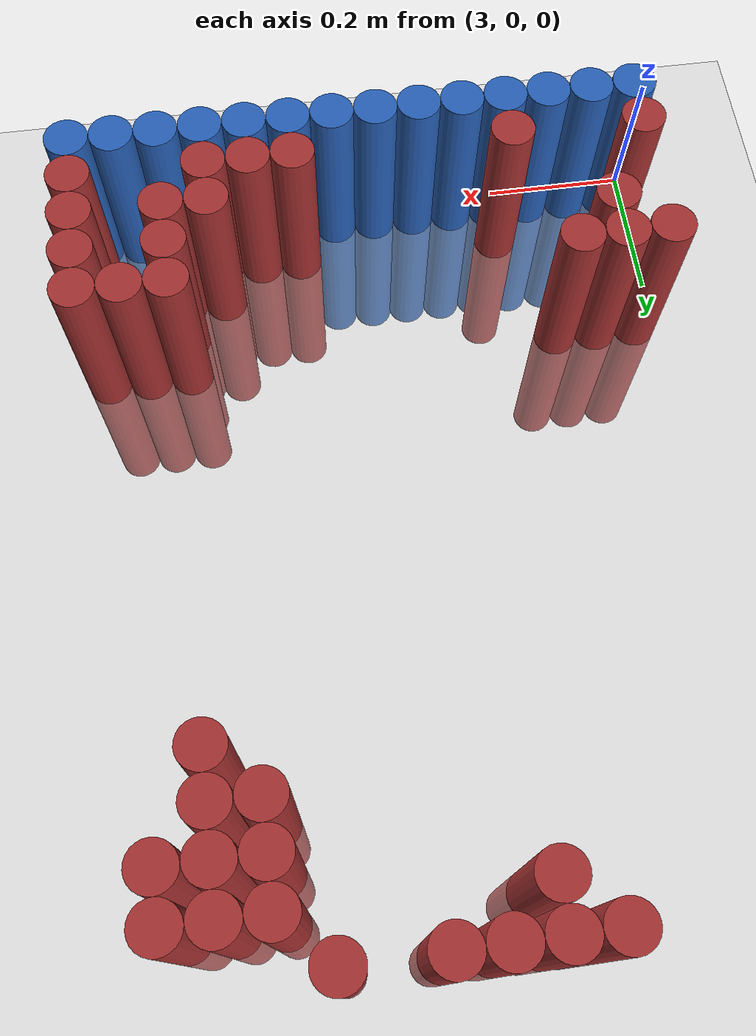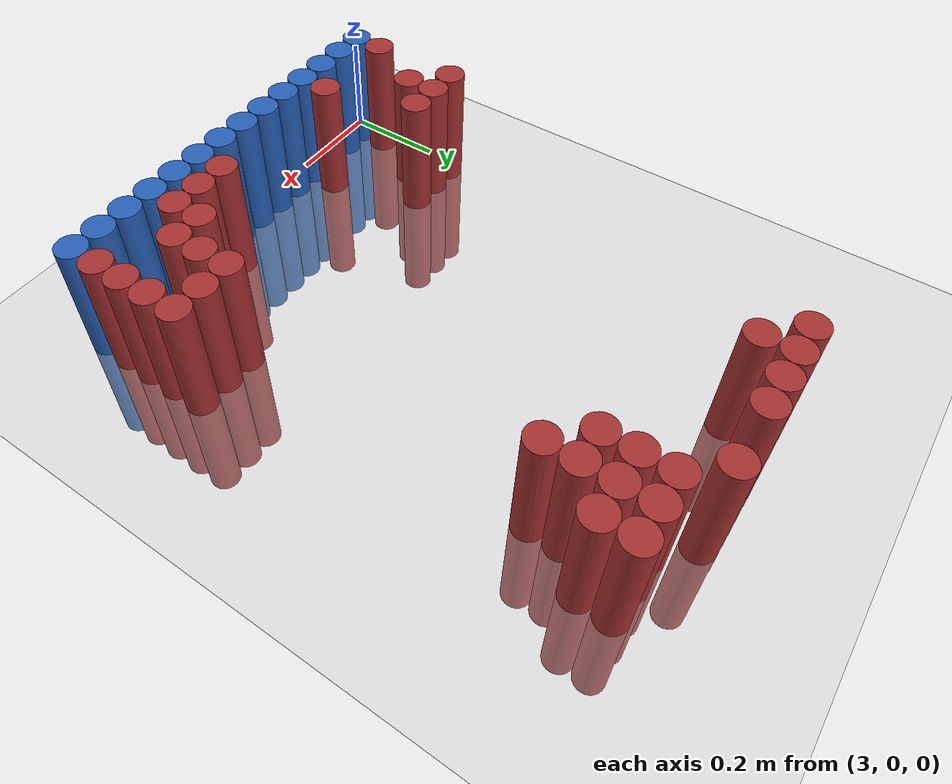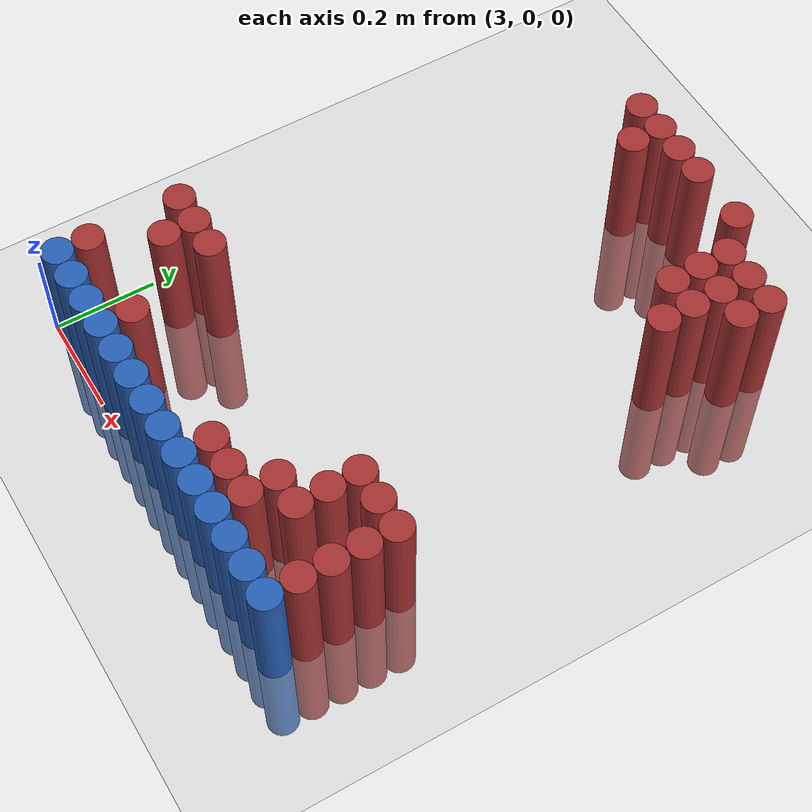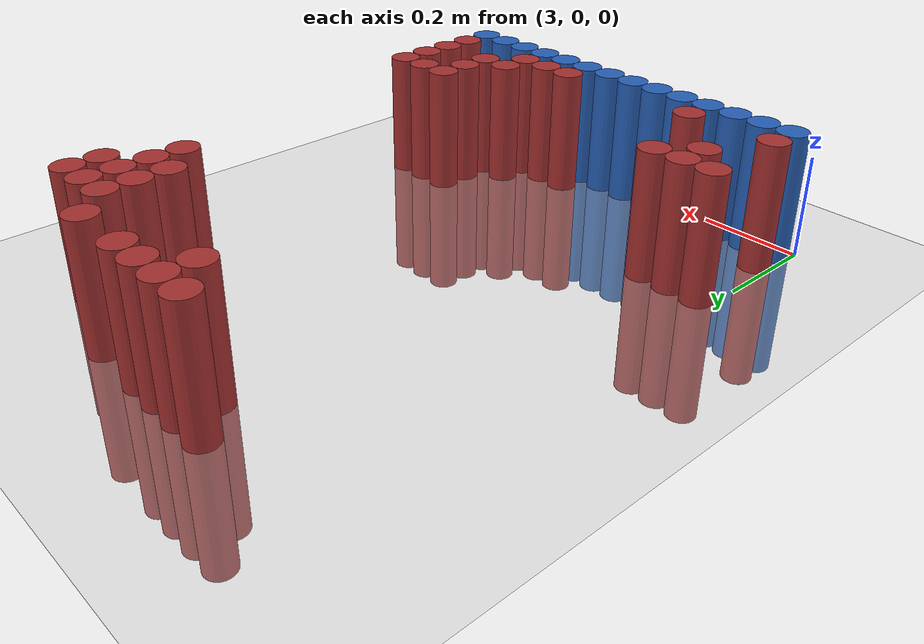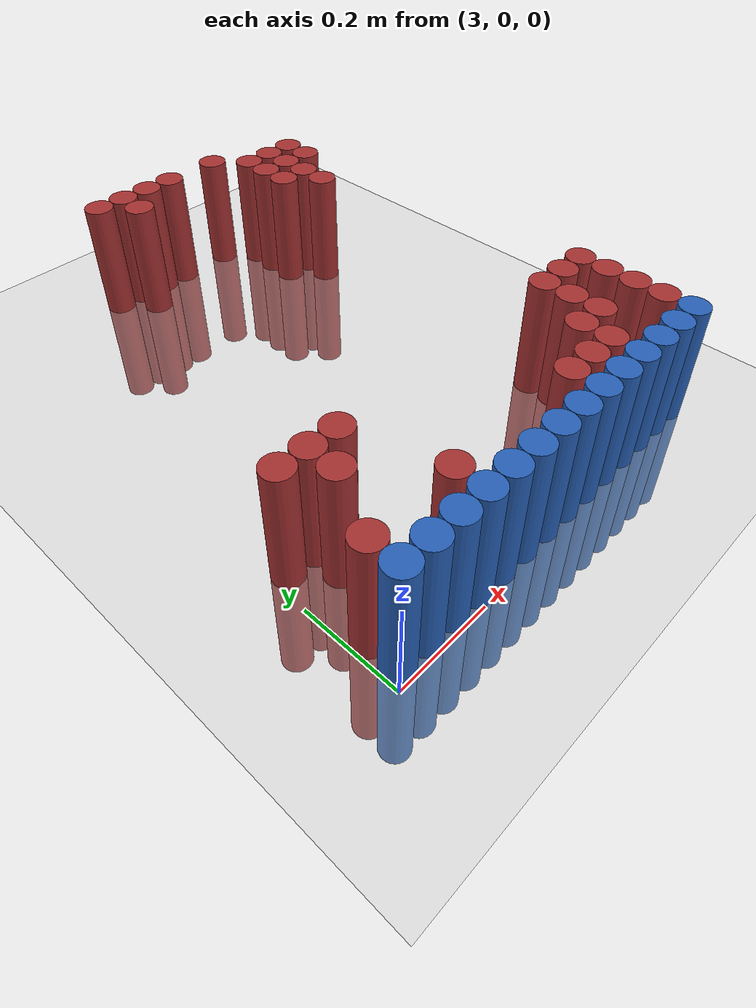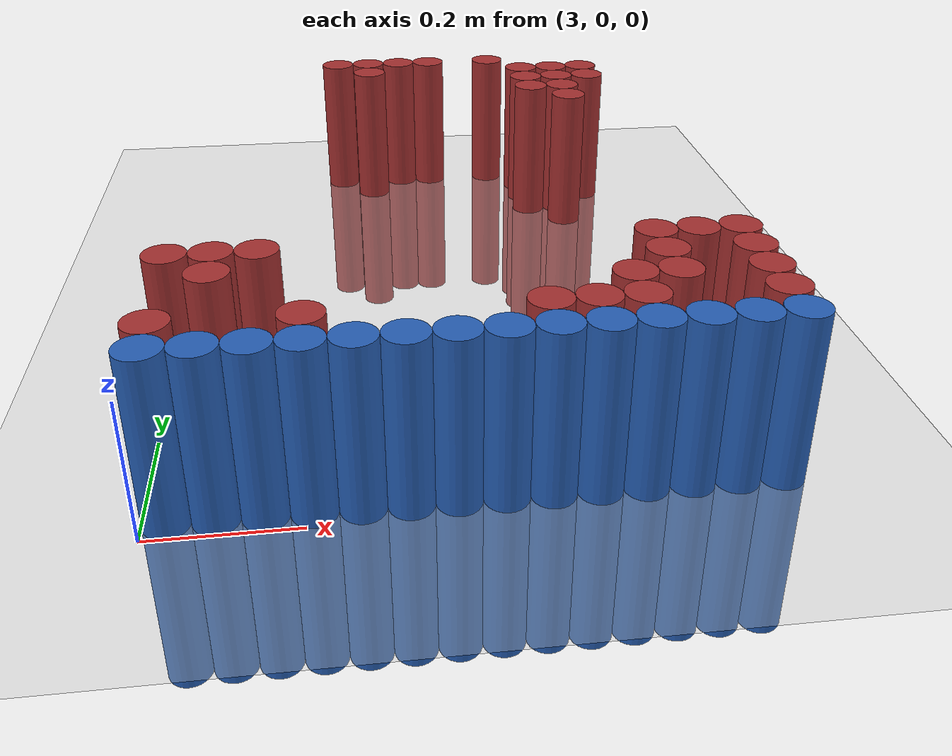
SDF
<sdf version="1.6">
 <world name="default">
  <model name="ground_plane">
   <static>1</static>
   <link name="link">
    <collision name="collision">
     <geometry><plane><normal>0 0 1</normal><size>100 100</size></plane></geometry>
     <surface><friction><ode><mu>100</mu><mu2>50</mu2></ode></friction></surface>
    </collision>
    <visual name="visual">
     <cast_shadows>0</cast_shadows>
     <geometry><plane><normal>0 0 1</normal><size>100 100</size></plane></geometry>
     <material>
      <script><uri>file://media/materials/scripts/gazebo.material</uri><name>Gazebo/Grey</name></script>
     </material>
    </visual>
   </link>
  </model>
  <model name="unit_cylinder_208">
   <static>1</static>
   <pose>3.270000 1.110000 0.000000 0.000000 0.000000 0.000000</pose>
   <link name="link">
    <inertial>
     <mass>1</mass>
     <inertia><ixx>0.145833</ixx><ixy>0</ixy><ixz>0</ixz><iyy>0.145833</iyy><iyz>0</iyz><izz>0.125</izz></inertia>
    </inertial>
    <collision name="collision">
     <geometry><cylinder><radius>0.030000</radius><length>0.5</length></cylinder></geometry>
    </collision>
    <visual name="visual">
     <geometry><cylinder><radius>0.030000</radius><length>0.5</length></cylinder></geometry>
     <material>
      <ambient>0.648000 0.192000 0.192000 1</ambient>
      <diffuse>0.648000 0.192000 0.192000 1</diffuse>
     </material>
     <material>
      <script><name>Gazebo/Grey</name><uri>file://media/materials/scripts/gazebo.material</uri></script>
     </material>
    </visual>
   </link>
  </model>
  <model name="unit_cylinder_209">
   <static>1</static>
   <pose>3.330000 1.110000 0.000000 0.000000 0.000000 0.000000</pose>
   <link name="link">
    <inertial>
     <mass>1</mass>
     <inertia><ixx>0.145833</ixx><ixy>0</ixy><ixz>0</ixz><iyy>0.145833</iyy><iyz>0</iyz><izz>0.125</izz></inertia>
    </inertial>
    <collision name="collision">
     <geometry><cylinder><radius>0.030000</radius><length>0.5</length></cylinder></geometry>
    </collision>
    <visual name="visual">
     <geometry><cylinder><radius>0.030000</radius><length>0.5</length></cylinder></geometry>
     <material>
      <ambient>0.648000 0.192000 0.192000 1</ambient>
      <diffuse>0.648000 0.192000 0.192000 1</diffuse>
     </material>
     <material>
      <script><name>Gazebo/Grey</name><uri>file://media/materials/scripts/gazebo.material</uri></script>
     </material>
    </visual>
   </link>
  </model>
  <model name="unit_cylinder_210">
   <static>1</static>
   <pose>3.390000 1.110000 0.000000 0.000000 0.000000 0.000000</pose>
   <link name="link">
    <inertial>
     <mass>1</mass>
     <inertia><ixx>0.145833</ixx><ixy>0</ixy><ixz>0</ixz><iyy>0.145833</iyy><iyz>0</iyz><izz>0.125</izz></inertia>
    </inertial>
    <collision name="collision">
     <geometry><cylinder><radius>0.030000</radius><length>0.5</length></cylinder></geometry>
    </collision>
    <visual name="visual">
     <geometry><cylinder><radius>0.030000</radius><length>0.5</length></cylinder></geometry>
     <material>
      <ambient>0.648000 0.192000 0.192000 1</ambient>
      <diffuse>0.648000 0.192000 0.192000 1</diffuse>
     </material>
     <material>
      <script><name>Gazebo/Grey</name><uri>file://media/materials/scripts/gazebo.material</uri></script>
     </material>
    </visual>
   </link>
  </model>
  <model name="unit_cylinder_211">
   <static>1</static>
   <pose>3.450000 1.110000 0.000000 0.000000 0.000000 0.000000</pose>
   <link name="link">
    <inertial>
     <mass>1</mass>
     <inertia><ixx>0.145833</ixx><ixy>0</ixy><ixz>0</ixz><iyy>0.145833</iyy><iyz>0</iyz><izz>0.125</izz></inertia>
    </inertial>
    <collision name="collision">
     <geometry><cylinder><radius>0.030000</radius><length>0.5</length></cylinder></geometry>
    </collision>
    <visual name="visual">
     <geometry><cylinder><radius>0.030000</radius><length>0.5</length></cylinder></geometry>
     <material>
      <ambient>0.648000 0.192000 0.192000 1</ambient>
      <diffuse>0.648000 0.192000 0.192000 1</diffuse>
     </material>
     <material>
      <script><name>Gazebo/Grey</name><uri>file://media/materials/scripts/gazebo.material</uri></script>
     </material>
    </visual>
   </link>
  </model>
  <model name="unit_cylinder_212">
   <static>1</static>
   <pose>3.570000 1.110000 0.000000 0.000000 0.000000 0.000000</pose>
   <link name="link">
    <inertial>
     <mass>1</mass>
     <inertia><ixx>0.145833</ixx><ixy>0</ixy><ixz>0</ixz><iyy>0.145833</iyy><iyz>0</iyz><izz>0.125</izz></inertia>
    </inertial>
    <collision name="collision">
     <geometry><cylinder><radius>0.030000</radius><length>0.5</length></cylinder></geometry>
    </collision>
    <visual name="visual">
     <geometry><cylinder><radius>0.030000</radius><length>0.5</length></cylinder></geometry>
     <material>
      <ambient>0.648000 0.192000 0.192000 1</ambient>
      <diffuse>0.648000 0.192000 0.192000 1</diffuse>
     </material>
     <material>
      <script><name>Gazebo/Grey</name><uri>file://media/materials/scripts/gazebo.material</uri></script>
     </material>
    </visual>
   </link>
  </model>
  <model name="unit_cylinder_215">
   <static>1</static>
   <pose>3.330000 1.050000 0.000000 0.000000 0.000000 0.000000</pose>
   <link name="link">
    <inertial>
     <mass>1</mass>
     <inertia><ixx>0.145833</ixx><ixy>0</ixy><ixz>0</ixz><iyy>0.145833</iyy><iyz>0</iyz><izz>0.125</izz></inertia>
    </inertial>
    <collision name="collision">
     <geometry><cylinder><radius>0.030000</radius><length>0.5</length></cylinder></geometry>
    </collision>
    <visual name="visual">
     <geometry><cylinder><radius>0.030000</radius><length>0.5</length></cylinder></geometry>
     <material>
      <ambient>0.648000 0.192000 0.192000 1</ambient>
      <diffuse>0.648000 0.192000 0.192000 1</diffuse>
     </material>
     <material>
      <script><name>Gazebo/Grey</name><uri>file://media/materials/scripts/gazebo.material</uri></script>
     </material>
    </visual>
   </link>
  </model>
  <model name="unit_cylinder_216">
   <static>1</static>
   <pose>3.630000 1.050000 0.000000 0.000000 0.000000 0.000000</pose>
   <link name="link">
    <inertial>
     <mass>1</mass>
     <inertia><ixx>0.145833</ixx><ixy>0</ixy><ixz>0</ixz><iyy>0.145833</iyy><iyz>0</iyz><izz>0.125</izz></inertia>
    </inertial>
    <collision name="collision">
     <geometry><cylinder><radius>0.030000</radius><length>0.5</length></cylinder></geometry>
    </collision>
    <visual name="visual">
     <geometry><cylinder><radius>0.030000</radius><length>0.5</length></cylinder></geometry>
     <material>
      <ambient>0.648000 0.192000 0.192000 1</ambient>
      <diffuse>0.648000 0.192000 0.192000 1</diffuse>
     </material>
     <material>
      <script><name>Gazebo/Grey</name><uri>file://media/materials/scripts/gazebo.material</uri></script>
     </material>
    </visual>
   </link>
  </model>
  <model name="unit_cylinder_217">
   <static>1</static>
   <pose>3.690000 1.050000 0.000000 0.000000 0.000000 0.000000</pose>
   <link name="link">
    <inertial>
     <mass>1</mass>
     <inertia><ixx>0.145833</ixx><ixy>0</ixy><ixz>0</ixz><iyy>0.145833</iyy><iyz>0</iyz><izz>0.125</izz></inertia>
    </inertial>
    <collision name="collision">
     <geometry><cylinder><radius>0.030000</radius><length>0.5</length></cylinder></geometry>
    </collision>
    <visual name="visual">
     <geometry><cylinder><radius>0.030000</radius><length>0.5</length></cylinder></geometry>
     <material>
      <ambient>0.648000 0.192000 0.192000 1</ambient>
      <diffuse>0.648000 0.192000 0.192000 1</diffuse>
     </material>
     <material>
      <script><name>Gazebo/Grey</name><uri>file://media/materials/scripts/gazebo.material</uri></script>
     </material>
    </visual>
   </link>
  </model>
  <model name="unit_cylinder_218">
   <static>1</static>
   <pose>3.750000 1.050000 0.000000 0.000000 0.000000 0.000000</pose>
   <link name="link">
    <inertial>
     <mass>1</mass>
     <inertia><ixx>0.145833</ixx><ixy>0</ixy><ixz>0</ixz><iyy>0.145833</iyy><iyz>0</iyz><izz>0.125</izz></inertia>
    </inertial>
    <collision name="collision">
     <geometry><cylinder><radius>0.030000</radius><length>0.5</length></cylinder></geometry>
    </collision>
    <visual name="visual">
     <geometry><cylinder><radius>0.030000</radius><length>0.5</length></cylinder></geometry>
     <material>
      <ambient>0.648000 0.192000 0.192000 1</ambient>
      <diffuse>0.648000 0.192000 0.192000 1</diffuse>
     </material>
     <material>
      <script><name>Gazebo/Grey</name><uri>file://media/materials/scripts/gazebo.material</uri></script>
     </material>
    </visual>
   </link>
  </model>
  <model name="unit_cylinder_219">
   <static>1</static>
   <pose>3.630000 0.990000 0.000000 0.000000 0.000000 0.000000</pose>
   <link name="link">
    <inertial>
     <mass>1</mass>
     <inertia><ixx>0.145833</ixx><ixy>0</ixy><ixz>0</ixz><iyy>0.145833</iyy><iyz>0</iyz><izz>0.125</izz></inertia>
    </inertial>
    <collision name="collision">
     <geometry><cylinder><radius>0.030000</radius><length>0.5</length></cylinder></geometry>
    </collision>
    <visual name="visual">
     <geometry><cylinder><radius>0.030000</radius><length>0.5</length></cylinder></geometry>
     <material>
      <ambient>0.648000 0.192000 0.192000 1</ambient>
      <diffuse>0.648000 0.192000 0.192000 1</diffuse>
     </material>
     <material>
      <script><name>Gazebo/Grey</name><uri>file://media/materials/scripts/gazebo.material</uri></script>
     </material>
    </visual>
   </link>
  </model>
  <model name="unit_cylinder_220">
   <static>1</static>
   <pose>3.690000 0.990000 0.000000 0.000000 0.000000 0.000000</pose>
   <link name="link">
    <inertial>
     <mass>1</mass>
     <inertia><ixx>0.145833</ixx><ixy>0</ixy><ixz>0</ixz><iyy>0.145833</iyy><iyz>0</iyz><izz>0.125</izz></inertia>
    </inertial>
    <collision name="collision">
     <geometry><cylinder><radius>0.030000</radius><length>0.5</length></cylinder></geometry>
    </collision>
    <visual name="visual">
     <geometry><cylinder><radius>0.030000</radius><length>0.5</length></cylinder></geometry>
     <material>
      <ambient>0.648000 0.192000 0.192000 1</ambient>
      <diffuse>0.648000 0.192000 0.192000 1</diffuse>
     </material>
     <material>
      <script><name>Gazebo/Grey</name><uri>file://media/materials/scripts/gazebo.material</uri></script>
     </material>
    </visual>
   </link>
  </model>
  <model name="unit_cylinder_221">
   <static>1</static>
   <pose>3.750000 0.990000 0.000000 0.000000 0.000000 0.000000</pose>
   <link name="link">
    <inertial>
     <mass>1</mass>
     <inertia><ixx>0.145833</ixx><ixy>0</ixy><ixz>0</ixz><iyy>0.145833</iyy><iyz>0</iyz><izz>0.125</izz></inertia>
    </inertial>
    <collision name="collision">
     <geometry><cylinder><radius>0.030000</radius><length>0.5</length></cylinder></geometry>
    </collision>
    <visual name="visual">
     <geometry><cylinder><radius>0.030000</radius><length>0.5</length></cylinder></geometry>
     <material>
      <ambient>0.648000 0.192000 0.192000 1</ambient>
      <diffuse>0.648000 0.192000 0.192000 1</diffuse>
     </material>
     <material>
      <script><name>Gazebo/Grey</name><uri>file://media/materials/scripts/gazebo.material</uri></script>
     </material>
    </visual>
   </link>
  </model>
  <model name="unit_cylinder_222">
   <static>1</static>
   <pose>3.630000 0.930000 0.000000 0.000000 0.000000 0.000000</pose>
   <link name="link">
    <inertial>
     <mass>1</mass>
     <inertia><ixx>0.145833</ixx><ixy>0</ixy><ixz>0</ixz><iyy>0.145833</iyy><iyz>0</iyz><izz>0.125</izz></inertia>
    </inertial>
    <collision name="collision">
     <geometry><cylinder><radius>0.030000</radius><length>0.5</length></cylinder></geometry>
    </collision>
    <visual name="visual">
     <geometry><cylinder><radius>0.030000</radius><length>0.5</length></cylinder></geometry>
     <material>
      <ambient>0.648000 0.192000 0.192000 1</ambient>
      <diffuse>0.648000 0.192000 0.192000 1</diffuse>
     </material>
     <material>
      <script><name>Gazebo/Grey</name><uri>file://media/materials/scripts/gazebo.material</uri></script>
     </material>
    </visual>
   </link>
  </model>
  <model name="unit_cylinder_223">
   <static>1</static>
   <pose>3.690000 0.930000 0.000000 0.000000 0.000000 0.000000</pose>
   <link name="link">
    <inertial>
     <mass>1</mass>
     <inertia><ixx>0.145833</ixx><ixy>0</ixy><ixz>0</ixz><iyy>0.145833</iyy><iyz>0</iyz><izz>0.125</izz></inertia>
    </inertial>
    <collision name="collision">
     <geometry><cylinder><radius>0.030000</radius><length>0.5</length></cylinder></geometry>
    </collision>
    <visual name="visual">
     <geometry><cylinder><radius>0.030000</radius><length>0.5</length></cylinder></geometry>
     <material>
      <ambient>0.648000 0.192000 0.192000 1</ambient>
      <diffuse>0.648000 0.192000 0.192000 1</diffuse>
     </material>
     <material>
      <script><name>Gazebo/Grey</name><uri>file://media/materials/scripts/gazebo.material</uri></script>
     </material>
    </visual>
   </link>
  </model>
  <model name="unit_cylinder_226">
   <static>1</static>
   <pose>3.690000 0.870000 0.000000 0.000000 0.000000 0.000000</pose>
   <link name="link">
    <inertial>
     <mass>1</mass>
     <inertia><ixx>0.145833</ixx><ixy>0</ixy><ixz>0</ixz><iyy>0.145833</iyy><iyz>0</iyz><izz>0.125</izz></inertia>
    </inertial>
    <collision name="collision">
     <geometry><cylinder><radius>0.030000</radius><length>0.5</length></cylinder></geometry>
    </collision>
    <visual name="visual">
     <geometry><cylinder><radius>0.030000</radius><length>0.5</length></cylinder></geometry>
     <material>
      <ambient>0.648000 0.192000 0.192000 1</ambient>
      <diffuse>0.648000 0.192000 0.192000 1</diffuse>
     </material>
     <material>
      <script><name>Gazebo/Grey</name><uri>file://media/materials/scripts/gazebo.material</uri></script>
     </material>
    </visual>
   </link>
  </model>
  <model name="unit_cylinder_268">
   <static>1</static>
   <pose>3.030000 0.270000 0.000000 0.000000 0.000000 0.000000</pose>
   <link name="link">
    <inertial>
     <mass>1</mass>
     <inertia><ixx>0.145833</ixx><ixy>0</ixy><ixz>0</ixz><iyy>0.145833</iyy><iyz>0</iyz><izz>0.125</izz></inertia>
    </inertial>
    <collision name="collision">
     <geometry><cylinder><radius>0.030000</radius><length>0.5</length></cylinder></geometry>
    </collision>
    <visual name="visual">
     <geometry><cylinder><radius>0.030000</radius><length>0.5</length></cylinder></geometry>
     <material>
      <ambient>0.648000 0.192000 0.192000 1</ambient>
      <diffuse>0.648000 0.192000 0.192000 1</diffuse>
     </material>
     <material>
      <script><name>Gazebo/Grey</name><uri>file://media/materials/scripts/gazebo.material</uri></script>
     </material>
    </visual>
   </link>
  </model>
  <model name="unit_cylinder_269">
   <static>1</static>
   <pose>3.090000 0.270000 0.000000 0.000000 0.000000 0.000000</pose>
   <link name="link">
    <inertial>
     <mass>1</mass>
     <inertia><ixx>0.145833</ixx><ixy>0</ixy><ixz>0</ixz><iyy>0.145833</iyy><iyz>0</iyz><izz>0.125</izz></inertia>
    </inertial>
    <collision name="collision">
     <geometry><cylinder><radius>0.030000</radius><length>0.5</length></cylinder></geometry>
    </collision>
    <visual name="visual">
     <geometry><cylinder><radius>0.030000</radius><length>0.5</length></cylinder></geometry>
     <material>
      <ambient>0.648000 0.192000 0.192000 1</ambient>
      <diffuse>0.648000 0.192000 0.192000 1</diffuse>
     </material>
     <material>
      <script><name>Gazebo/Grey</name><uri>file://media/materials/scripts/gazebo.material</uri></script>
     </material>
    </visual>
   </link>
  </model>
  <model name="unit_cylinder_270">
   <static>1</static>
   <pose>3.150000 0.270000 0.000000 0.000000 0.000000 0.000000</pose>
   <link name="link">
    <inertial>
     <mass>1</mass>
     <inertia><ixx>0.145833</ixx><ixy>0</ixy><ixz>0</ixz><iyy>0.145833</iyy><iyz>0</iyz><izz>0.125</izz></inertia>
    </inertial>
    <collision name="collision">
     <geometry><cylinder><radius>0.030000</radius><length>0.5</length></cylinder></geometry>
    </collision>
    <visual name="visual">
     <geometry><cylinder><radius>0.030000</radius><length>0.5</length></cylinder></geometry>
     <material>
      <ambient>0.648000 0.192000 0.192000 1</ambient>
      <diffuse>0.648000 0.192000 0.192000 1</diffuse>
     </material>
     <material>
      <script><name>Gazebo/Grey</name><uri>file://media/materials/scripts/gazebo.material</uri></script>
     </material>
    </visual>
   </link>
  </model>
  <model name="unit_cylinder_271">
   <static>1</static>
   <pose>3.690000 0.270000 0.000000 0.000000 0.000000 0.000000</pose>
   <link name="link">
    <inertial>
     <mass>1</mass>
     <inertia><ixx>0.145833</ixx><ixy>0</ixy><ixz>0</ixz><iyy>0.145833</iyy><iyz>0</iyz><izz>0.125</izz></inertia>
    </inertial>
    <collision name="collision">
     <geometry><cylinder><radius>0.030000</radius><length>0.5</length></cylinder></geometry>
    </collision>
    <visual name="visual">
     <geometry><cylinder><radius>0.030000</radius><length>0.5</length></cylinder></geometry>
     <material>
      <ambient>0.648000 0.192000 0.192000 1</ambient>
      <diffuse>0.648000 0.192000 0.192000 1</diffuse>
     </material>
     <material>
      <script><name>Gazebo/Grey</name><uri>file://media/materials/scripts/gazebo.material</uri></script>
     </material>
    </visual>
   </link>
  </model>
  <model name="unit_cylinder_272">
   <static>1</static>
   <pose>3.750000 0.270000 0.000000 0.000000 0.000000 0.000000</pose>
   <link name="link">
    <inertial>
     <mass>1</mass>
     <inertia><ixx>0.145833</ixx><ixy>0</ixy><ixz>0</ixz><iyy>0.145833</iyy><iyz>0</iyz><izz>0.125</izz></inertia>
    </inertial>
    <collision name="collision">
     <geometry><cylinder><radius>0.030000</radius><length>0.5</length></cylinder></geometry>
    </collision>
    <visual name="visual">
     <geometry><cylinder><radius>0.030000</radius><length>0.5</length></cylinder></geometry>
     <material>
      <ambient>0.648000 0.192000 0.192000 1</ambient>
      <diffuse>0.648000 0.192000 0.192000 1</diffuse>
     </material>
     <material>
      <script><name>Gazebo/Grey</name><uri>file://media/materials/scripts/gazebo.material</uri></script>
     </material>
    </visual>
   </link>
  </model>
  <model name="unit_cylinder_273">
   <static>1</static>
   <pose>3.810000 0.270000 0.000000 0.000000 0.000000 0.000000</pose>
   <link name="link">
    <inertial>
     <mass>1</mass>
     <inertia><ixx>0.145833</ixx><ixy>0</ixy><ixz>0</ixz><iyy>0.145833</iyy><iyz>0</iyz><izz>0.125</izz></inertia>
    </inertial>
    <collision name="collision">
     <geometry><cylinder><radius>0.030000</radius><length>0.5</length></cylinder></geometry>
    </collision>
    <visual name="visual">
     <geometry><cylinder><radius>0.030000</radius><length>0.5</length></cylinder></geometry>
     <material>
      <ambient>0.648000 0.192000 0.192000 1</ambient>
      <diffuse>0.648000 0.192000 0.192000 1</diffuse>
     </material>
     <material>
      <script><name>Gazebo/Grey</name><uri>file://media/materials/scripts/gazebo.material</uri></script>
     </material>
    </visual>
   </link>
  </model>
  <model name="unit_cylinder_276">
   <static>1</static>
   <pose>3.090000 0.210000 0.000000 0.000000 0.000000 0.000000</pose>
   <link name="link">
    <inertial>
     <mass>1</mass>
     <inertia><ixx>0.145833</ixx><ixy>0</ixy><ixz>0</ixz><iyy>0.145833</iyy><iyz>0</iyz><izz>0.125</izz></inertia>
    </inertial>
    <collision name="collision">
     <geometry><cylinder><radius>0.030000</radius><length>0.5</length></cylinder></geometry>
    </collision>
    <visual name="visual">
     <geometry><cylinder><radius>0.030000</radius><length>0.5</length></cylinder></geometry>
     <material>
      <ambient>0.648000 0.192000 0.192000 1</ambient>
      <diffuse>0.648000 0.192000 0.192000 1</diffuse>
     </material>
     <material>
      <script><name>Gazebo/Grey</name><uri>file://media/materials/scripts/gazebo.material</uri></script>
     </material>
    </visual>
   </link>
  </model>
  <model name="unit_cylinder_277">
   <static>1</static>
   <pose>3.690000 0.210000 0.000000 0.000000 0.000000 0.000000</pose>
   <link name="link">
    <inertial>
     <mass>1</mass>
     <inertia><ixx>0.145833</ixx><ixy>0</ixy><ixz>0</ixz><iyy>0.145833</iyy><iyz>0</iyz><izz>0.125</izz></inertia>
    </inertial>
    <collision name="collision">
     <geometry><cylinder><radius>0.030000</radius><length>0.5</length></cylinder></geometry>
    </collision>
    <visual name="visual">
     <geometry><cylinder><radius>0.030000</radius><length>0.5</length></cylinder></geometry>
     <material>
      <ambient>0.648000 0.192000 0.192000 1</ambient>
      <diffuse>0.648000 0.192000 0.192000 1</diffuse>
     </material>
     <material>
      <script><name>Gazebo/Grey</name><uri>file://media/materials/scripts/gazebo.material</uri></script>
     </material>
    </visual>
   </link>
  </model>
  <model name="unit_cylinder_278">
   <static>1</static>
   <pose>3.810000 0.210000 0.000000 0.000000 0.000000 0.000000</pose>
   <link name="link">
    <inertial>
     <mass>1</mass>
     <inertia><ixx>0.145833</ixx><ixy>0</ixy><ixz>0</ixz><iyy>0.145833</iyy><iyz>0</iyz><izz>0.125</izz></inertia>
    </inertial>
    <collision name="collision">
     <geometry><cylinder><radius>0.030000</radius><length>0.5</length></cylinder></geometry>
    </collision>
    <visual name="visual">
     <geometry><cylinder><radius>0.030000</radius><length>0.5</length></cylinder></geometry>
     <material>
      <ambient>0.648000 0.192000 0.192000 1</ambient>
      <diffuse>0.648000 0.192000 0.192000 1</diffuse>
     </material>
     <material>
      <script><name>Gazebo/Grey</name><uri>file://media/materials/scripts/gazebo.material</uri></script>
     </material>
    </visual>
   </link>
  </model>
  <model name="unit_cylinder_282">
   <static>1</static>
   <pose>3.630000 0.150000 0.000000 0.000000 0.000000 0.000000</pose>
   <link name="link">
    <inertial>
     <mass>1</mass>
     <inertia><ixx>0.145833</ixx><ixy>0</ixy><ixz>0</ixz><iyy>0.145833</iyy><iyz>0</iyz><izz>0.125</izz></inertia>
    </inertial>
    <collision name="collision">
     <geometry><cylinder><radius>0.030000</radius><length>0.5</length></cylinder></geometry>
    </collision>
    <visual name="visual">
     <geometry><cylinder><radius>0.030000</radius><length>0.5</length></cylinder></geometry>
     <material>
      <ambient>0.648000 0.192000 0.192000 1</ambient>
      <diffuse>0.648000 0.192000 0.192000 1</diffuse>
     </material>
     <material>
      <script><name>Gazebo/Grey</name><uri>file://media/materials/scripts/gazebo.material</uri></script>
     </material>
    </visual>
   </link>
  </model>
  <model name="unit_cylinder_283">
   <static>1</static>
   <pose>3.690000 0.150000 0.000000 0.000000 0.000000 0.000000</pose>
   <link name="link">
    <inertial>
     <mass>1</mass>
     <inertia><ixx>0.145833</ixx><ixy>0</ixy><ixz>0</ixz><iyy>0.145833</iyy><iyz>0</iyz><izz>0.125</izz></inertia>
    </inertial>
    <collision name="collision">
     <geometry><cylinder><radius>0.030000</radius><length>0.5</length></cylinder></geometry>
    </collision>
    <visual name="visual">
     <geometry><cylinder><radius>0.030000</radius><length>0.5</length></cylinder></geometry>
     <material>
      <ambient>0.648000 0.192000 0.192000 1</ambient>
      <diffuse>0.648000 0.192000 0.192000 1</diffuse>
     </material>
     <material>
      <script><name>Gazebo/Grey</name><uri>file://media/materials/scripts/gazebo.material</uri></script>
     </material>
    </visual>
   </link>
  </model>
  <model name="unit_cylinder_284">
   <static>1</static>
   <pose>3.810000 0.150000 0.000000 0.000000 0.000000 0.000000</pose>
   <link name="link">
    <inertial>
     <mass>1</mass>
     <inertia><ixx>0.145833</ixx><ixy>0</ixy><ixz>0</ixz><iyy>0.145833</iyy><iyz>0</iyz><izz>0.125</izz></inertia>
    </inertial>
    <collision name="collision">
     <geometry><cylinder><radius>0.030000</radius><length>0.5</length></cylinder></geometry>
    </collision>
    <visual name="visual">
     <geometry><cylinder><radius>0.030000</radius><length>0.5</length></cylinder></geometry>
     <material>
      <ambient>0.648000 0.192000 0.192000 1</ambient>
      <diffuse>0.648000 0.192000 0.192000 1</diffuse>
     </material>
     <material>
      <script><name>Gazebo/Grey</name><uri>file://media/materials/scripts/gazebo.material</uri></script>
     </material>
    </visual>
   </link>
  </model>
  <model name="unit_cylinder_294">
   <static>1</static>
   <pose>3.030000 0.090000 0.000000 0.000000 0.000000 0.000000</pose>
   <link name="link">
    <inertial>
     <mass>1</mass>
     <inertia><ixx>0.145833</ixx><ixy>0</ixy><ixz>0</ixz><iyy>0.145833</iyy><iyz>0</iyz><izz>0.125</izz></inertia>
    </inertial>
    <collision name="collision">
     <geometry><cylinder><radius>0.030000</radius><length>0.5</length></cylinder></geometry>
    </collision>
    <visual name="visual">
     <geometry><cylinder><radius>0.030000</radius><length>0.5</length></cylinder></geometry>
     <material>
      <ambient>0.648000 0.192000 0.192000 1</ambient>
      <diffuse>0.648000 0.192000 0.192000 1</diffuse>
     </material>
     <material>
      <script><name>Gazebo/Grey</name><uri>file://media/materials/scripts/gazebo.material</uri></script>
     </material>
    </visual>
   </link>
  </model>
  <model name="unit_cylinder_295">
   <static>1</static>
   <pose>3.210000 0.090000 0.000000 0.000000 0.000000 0.000000</pose>
   <link name="link">
    <inertial>
     <mass>1</mass>
     <inertia><ixx>0.145833</ixx><ixy>0</ixy><ixz>0</ixz><iyy>0.145833</iyy><iyz>0</iyz><izz>0.125</izz></inertia>
    </inertial>
    <collision name="collision">
     <geometry><cylinder><radius>0.030000</radius><length>0.5</length></cylinder></geometry>
    </collision>
    <visual name="visual">
     <geometry><cylinder><radius>0.030000</radius><length>0.5</length></cylinder></geometry>
     <material>
      <ambient>0.648000 0.192000 0.192000 1</ambient>
      <diffuse>0.648000 0.192000 0.192000 1</diffuse>
     </material>
     <material>
      <script><name>Gazebo/Grey</name><uri>file://media/materials/scripts/gazebo.material</uri></script>
     </material>
    </visual>
   </link>
  </model>
  <model name="unit_cylinder_296">
   <static>1</static>
   <pose>3.510000 0.090000 0.000000 0.000000 0.000000 0.000000</pose>
   <link name="link">
    <inertial>
     <mass>1</mass>
     <inertia><ixx>0.145833</ixx><ixy>0</ixy><ixz>0</ixz><iyy>0.145833</iyy><iyz>0</iyz><izz>0.125</izz></inertia>
    </inertial>
    <collision name="collision">
     <geometry><cylinder><radius>0.030000</radius><length>0.5</length></cylinder></geometry>
    </collision>
    <visual name="visual">
     <geometry><cylinder><radius>0.030000</radius><length>0.5</length></cylinder></geometry>
     <material>
      <ambient>0.648000 0.192000 0.192000 1</ambient>
      <diffuse>0.648000 0.192000 0.192000 1</diffuse>
     </material>
     <material>
      <script><name>Gazebo/Grey</name><uri>file://media/materials/scripts/gazebo.material</uri></script>
     </material>
    </visual>
   </link>
  </model>
  <model name="unit_cylinder_297">
   <static>1</static>
   <pose>3.570000 0.090000 0.000000 0.000000 0.000000 0.000000</pose>
   <link name="link">
    <inertial>
     <mass>1</mass>
     <inertia><ixx>0.145833</ixx><ixy>0</ixy><ixz>0</ixz><iyy>0.145833</iyy><iyz>0</iyz><izz>0.125</izz></inertia>
    </inertial>
    <collision name="collision">
     <geometry><cylinder><radius>0.030000</radius><length>0.5</length></cylinder></geometry>
    </collision>
    <visual name="visual">
     <geometry><cylinder><radius>0.030000</radius><length>0.5</length></cylinder></geometry>
     <material>
      <ambient>0.648000 0.192000 0.192000 1</ambient>
      <diffuse>0.648000 0.192000 0.192000 1</diffuse>
     </material>
     <material>
      <script><name>Gazebo/Grey</name><uri>file://media/materials/scripts/gazebo.material</uri></script>
     </material>
    </visual>
   </link>
  </model>
  <model name="unit_cylinder_298">
   <static>1</static>
   <pose>3.630000 0.090000 0.000000 0.000000 0.000000 0.000000</pose>
   <link name="link">
    <inertial>
     <mass>1</mass>
     <inertia><ixx>0.145833</ixx><ixy>0</ixy><ixz>0</ixz><iyy>0.145833</iyy><iyz>0</iyz><izz>0.125</izz></inertia>
    </inertial>
    <collision name="collision">
     <geometry><cylinder><radius>0.030000</radius><length>0.5</length></cylinder></geometry>
    </collision>
    <visual name="visual">
     <geometry><cylinder><radius>0.030000</radius><length>0.5</length></cylinder></geometry>
     <material>
      <ambient>0.648000 0.192000 0.192000 1</ambient>
      <diffuse>0.648000 0.192000 0.192000 1</diffuse>
     </material>
     <material>
      <script><name>Gazebo/Grey</name><uri>file://media/materials/scripts/gazebo.material</uri></script>
     </material>
    </visual>
   </link>
  </model>
  <model name="unit_cylinder_299">
   <static>1</static>
   <pose>3.810000 0.090000 0.000000 0.000000 0.000000 0.000000</pose>
   <link name="link">
    <inertial>
     <mass>1</mass>
     <inertia><ixx>0.145833</ixx><ixy>0</ixy><ixz>0</ixz><iyy>0.145833</iyy><iyz>0</iyz><izz>0.125</izz></inertia>
    </inertial>
    <collision name="collision">
     <geometry><cylinder><radius>0.030000</radius><length>0.5</length></cylinder></geometry>
    </collision>
    <visual name="visual">
     <geometry><cylinder><radius>0.030000</radius><length>0.5</length></cylinder></geometry>
     <material>
      <ambient>0.648000 0.192000 0.192000 1</ambient>
      <diffuse>0.648000 0.192000 0.192000 1</diffuse>
     </material>
     <material>
      <script><name>Gazebo/Grey</name><uri>file://media/materials/scripts/gazebo.material</uri></script>
     </material>
    </visual>
   </link>
  </model>
  <model name="unit_cylinder_316">
   <static>1</static>
   <pose>3.030000 0.030000 0.000000 0.000000 0.000000 0.000000</pose>
   <link name="link">
    <inertial>
     <mass>1</mass>
     <inertia><ixx>0.145833</ixx><ixy>0</ixy><ixz>0</ixz><iyy>0.145833</iyy><iyz>0</iyz><izz>0.125</izz></inertia>
    </inertial>
    <collision name="collision">
     <geometry><cylinder><radius>0.030000</radius><length>0.5</length></cylinder></geometry>
    </collision>
    <visual name="visual">
     <geometry><cylinder><radius>0.030000</radius><length>0.5</length></cylinder></geometry>
     <material>
      <ambient>0.152000 0.379000 0.720000 1</ambient>
      <diffuse>0.152000 0.379000 0.720000 1</diffuse>
     </material>
     <material>
      <script><name>Gazebo/Grey</name><uri>file://media/materials/scripts/gazebo.material</uri></script>
     </material>
    </visual>
   </link>
  </model>
  <model name="unit_cylinder_317">
   <static>1</static>
   <pose>3.090000 0.030000 0.000000 0.000000 0.000000 0.000000</pose>
   <link name="link">
    <inertial>
     <mass>1</mass>
     <inertia><ixx>0.145833</ixx><ixy>0</ixy><ixz>0</ixz><iyy>0.145833</iyy><iyz>0</iyz><izz>0.125</izz></inertia>
    </inertial>
    <collision name="collision">
     <geometry><cylinder><radius>0.030000</radius><length>0.5</length></cylinder></geometry>
    </collision>
    <visual name="visual">
     <geometry><cylinder><radius>0.030000</radius><length>0.5</length></cylinder></geometry>
     <material>
      <ambient>0.152000 0.379000 0.720000 1</ambient>
      <diffuse>0.152000 0.379000 0.720000 1</diffuse>
     </material>
     <material>
      <script><name>Gazebo/Grey</name><uri>file://media/materials/scripts/gazebo.material</uri></script>
     </material>
    </visual>
   </link>
  </model>
  <model name="unit_cylinder_318">
   <static>1</static>
   <pose>3.150000 0.030000 0.000000 0.000000 0.000000 0.000000</pose>
   <link name="link">
    <inertial>
     <mass>1</mass>
     <inertia><ixx>0.145833</ixx><ixy>0</ixy><ixz>0</ixz><iyy>0.145833</iyy><iyz>0</iyz><izz>0.125</izz></inertia>
    </inertial>
    <collision name="collision">
     <geometry><cylinder><radius>0.030000</radius><length>0.5</length></cylinder></geometry>
    </collision>
    <visual name="visual">
     <geometry><cylinder><radius>0.030000</radius><length>0.5</length></cylinder></geometry>
     <material>
      <ambient>0.152000 0.379000 0.720000 1</ambient>
      <diffuse>0.152000 0.379000 0.720000 1</diffuse>
     </material>
     <material>
      <script><name>Gazebo/Grey</name><uri>file://media/materials/scripts/gazebo.material</uri></script>
     </material>
    </visual>
   </link>
  </model>
  <model name="unit_cylinder_319">
   <static>1</static>
   <pose>3.210000 0.030000 0.000000 0.000000 0.000000 0.000000</pose>
   <link name="link">
    <inertial>
     <mass>1</mass>
     <inertia><ixx>0.145833</ixx><ixy>0</ixy><ixz>0</ixz><iyy>0.145833</iyy><iyz>0</iyz><izz>0.125</izz></inertia>
    </inertial>
    <collision name="collision">
     <geometry><cylinder><radius>0.030000</radius><length>0.5</length></cylinder></geometry>
    </collision>
    <visual name="visual">
     <geometry><cylinder><radius>0.030000</radius><length>0.5</length></cylinder></geometry>
     <material>
      <ambient>0.152000 0.379000 0.720000 1</ambient>
      <diffuse>0.152000 0.379000 0.720000 1</diffuse>
     </material>
     <material>
      <script><name>Gazebo/Grey</name><uri>file://media/materials/scripts/gazebo.material</uri></script>
     </material>
    </visual>
   </link>
  </model>
  <model name="unit_cylinder_320">
   <static>1</static>
   <pose>3.270000 0.030000 0.000000 0.000000 0.000000 0.000000</pose>
   <link name="link">
    <inertial>
     <mass>1</mass>
     <inertia><ixx>0.145833</ixx><ixy>0</ixy><ixz>0</ixz><iyy>0.145833</iyy><iyz>0</iyz><izz>0.125</izz></inertia>
    </inertial>
    <collision name="collision">
     <geometry><cylinder><radius>0.030000</radius><length>0.5</length></cylinder></geometry>
    </collision>
    <visual name="visual">
     <geometry><cylinder><radius>0.030000</radius><length>0.5</length></cylinder></geometry>
     <material>
      <ambient>0.152000 0.379000 0.720000 1</ambient>
      <diffuse>0.152000 0.379000 0.720000 1</diffuse>
     </material>
     <material>
      <script><name>Gazebo/Grey</name><uri>file://media/materials/scripts/gazebo.material</uri></script>
     </material>
    </visual>
   </link>
  </model>
  <model name="unit_cylinder_321">
   <static>1</static>
   <pose>3.330000 0.030000 0.000000 0.000000 0.000000 0.000000</pose>
   <link name="link">
    <inertial>
     <mass>1</mass>
     <inertia><ixx>0.145833</ixx><ixy>0</ixy><ixz>0</ixz><iyy>0.145833</iyy><iyz>0</iyz><izz>0.125</izz></inertia>
    </inertial>
    <collision name="collision">
     <geometry><cylinder><radius>0.030000</radius><length>0.5</length></cylinder></geometry>
    </collision>
    <visual name="visual">
     <geometry><cylinder><radius>0.030000</radius><length>0.5</length></cylinder></geometry>
     <material>
      <ambient>0.152000 0.379000 0.720000 1</ambient>
      <diffuse>0.152000 0.379000 0.720000 1</diffuse>
     </material>
     <material>
      <script><name>Gazebo/Grey</name><uri>file://media/materials/scripts/gazebo.material</uri></script>
     </material>
    </visual>
   </link>
  </model>
  <model name="unit_cylinder_322">
   <static>1</static>
   <pose>3.390000 0.030000 0.000000 0.000000 0.000000 0.000000</pose>
   <link name="link">
    <inertial>
     <mass>1</mass>
     <inertia><ixx>0.145833</ixx><ixy>0</ixy><ixz>0</ixz><iyy>0.145833</iyy><iyz>0</iyz><izz>0.125</izz></inertia>
    </inertial>
    <collision name="collision">
     <geometry><cylinder><radius>0.030000</radius><length>0.5</length></cylinder></geometry>
    </collision>
    <visual name="visual">
     <geometry><cylinder><radius>0.030000</radius><length>0.5</length></cylinder></geometry>
     <material>
      <ambient>0.152000 0.379000 0.720000 1</ambient>
      <diffuse>0.152000 0.379000 0.720000 1</diffuse>
     </material>
     <material>
      <script><name>Gazebo/Grey</name><uri>file://media/materials/scripts/gazebo.material</uri></script>
     </material>
    </visual>
   </link>
  </model>
  <model name="unit_cylinder_323">
   <static>1</static>
   <pose>3.450000 0.030000 0.000000 0.000000 0.000000 0.000000</pose>
   <link name="link">
    <inertial>
     <mass>1</mass>
     <inertia><ixx>0.145833</ixx><ixy>0</ixy><ixz>0</ixz><iyy>0.145833</iyy><iyz>0</iyz><izz>0.125</izz></inertia>
    </inertial>
    <collision name="collision">
     <geometry><cylinder><radius>0.030000</radius><length>0.5</length></cylinder></geometry>
    </collision>
    <visual name="visual">
     <geometry><cylinder><radius>0.030000</radius><length>0.5</length></cylinder></geometry>
     <material>
      <ambient>0.152000 0.379000 0.720000 1</ambient>
      <diffuse>0.152000 0.379000 0.720000 1</diffuse>
     </material>
     <material>
      <script><name>Gazebo/Grey</name><uri>file://media/materials/scripts/gazebo.material</uri></script>
     </material>
    </visual>
   </link>
  </model>
  <model name="unit_cylinder_324">
   <static>1</static>
   <pose>3.510000 0.030000 0.000000 0.000000 0.000000 0.000000</pose>
   <link name="link">
    <inertial>
     <mass>1</mass>
     <inertia><ixx>0.145833</ixx><ixy>0</ixy><ixz>0</ixz><iyy>0.145833</iyy><iyz>0</iyz><izz>0.125</izz></inertia>
    </inertial>
    <collision name="collision">
     <geometry><cylinder><radius>0.030000</radius><length>0.5</length></cylinder></geometry>
    </collision>
    <visual name="visual">
     <geometry><cylinder><radius>0.030000</radius><length>0.5</length></cylinder></geometry>
     <material>
      <ambient>0.152000 0.379000 0.720000 1</ambient>
      <diffuse>0.152000 0.379000 0.720000 1</diffuse>
     </material>
     <material>
      <script><name>Gazebo/Grey</name><uri>file://media/materials/scripts/gazebo.material</uri></script>
     </material>
    </visual>
   </link>
  </model>
  <model name="unit_cylinder_325">
   <static>1</static>
   <pose>3.570000 0.030000 0.000000 0.000000 0.000000 0.000000</pose>
   <link name="link">
    <inertial>
     <mass>1</mass>
     <inertia><ixx>0.145833</ixx><ixy>0</ixy><ixz>0</ixz><iyy>0.145833</iyy><iyz>0</iyz><izz>0.125</izz></inertia>
    </inertial>
    <collision name="collision">
     <geometry><cylinder><radius>0.030000</radius><length>0.5</length></cylinder></geometry>
    </collision>
    <visual name="visual">
     <geometry><cylinder><radius>0.030000</radius><length>0.5</length></cylinder></geometry>
     <material>
      <ambient>0.152000 0.379000 0.720000 1</ambient>
      <diffuse>0.152000 0.379000 0.720000 1</diffuse>
     </material>
     <material>
      <script><name>Gazebo/Grey</name><uri>file://media/materials/scripts/gazebo.material</uri></script>
     </material>
    </visual>
   </link>
  </model>
  <model name="unit_cylinder_326">
   <static>1</static>
   <pose>3.630000 0.030000 0.000000 0.000000 0.000000 0.000000</pose>
   <link name="link">
    <inertial>
     <mass>1</mass>
     <inertia><ixx>0.145833</ixx><ixy>0</ixy><ixz>0</ixz><iyy>0.145833</iyy><iyz>0</iyz><izz>0.125</izz></inertia>
    </inertial>
    <collision name="collision">
     <geometry><cylinder><radius>0.030000</radius><length>0.5</length></cylinder></geometry>
    </collision>
    <visual name="visual">
     <geometry><cylinder><radius>0.030000</radius><length>0.5</length></cylinder></geometry>
     <material>
      <ambient>0.152000 0.379000 0.720000 1</ambient>
      <diffuse>0.152000 0.379000 0.720000 1</diffuse>
     </material>
     <material>
      <script><name>Gazebo/Grey</name><uri>file://media/materials/scripts/gazebo.material</uri></script>
     </material>
    </visual>
   </link>
  </model>
  <model name="unit_cylinder_327">
   <static>1</static>
   <pose>3.690000 0.030000 0.000000 0.000000 0.000000 0.000000</pose>
   <link name="link">
    <inertial>
     <mass>1</mass>
     <inertia><ixx>0.145833</ixx><ixy>0</ixy><ixz>0</ixz><iyy>0.145833</iyy><iyz>0</iyz><izz>0.125</izz></inertia>
    </inertial>
    <collision name="collision">
     <geometry><cylinder><radius>0.030000</radius><length>0.5</length></cylinder></geometry>
    </collision>
    <visual name="visual">
     <geometry><cylinder><radius>0.030000</radius><length>0.5</length></cylinder></geometry>
     <material>
      <ambient>0.152000 0.379000 0.720000 1</ambient>
      <diffuse>0.152000 0.379000 0.720000 1</diffuse>
     </material>
     <material>
      <script><name>Gazebo/Grey</name><uri>file://media/materials/scripts/gazebo.material</uri></script>
     </material>
    </visual>
   </link>
  </model>
  <model name="unit_cylinder_328">
   <static>1</static>
   <pose>3.750000 0.030000 0.000000 0.000000 0.000000 0.000000</pose>
   <link name="link">
    <inertial>
     <mass>1</mass>
     <inertia><ixx>0.145833</ixx><ixy>0</ixy><ixz>0</ixz><iyy>0.145833</iyy><iyz>0</iyz><izz>0.125</izz></inertia>
    </inertial>
    <collision name="collision">
     <geometry><cylinder><radius>0.030000</radius><length>0.5</length></cylinder></geometry>
    </collision>
    <visual name="visual">
     <geometry><cylinder><radius>0.030000</radius><length>0.5</length></cylinder></geometry>
     <material>
      <ambient>0.152000 0.379000 0.720000 1</ambient>
      <diffuse>0.152000 0.379000 0.720000 1</diffuse>
     </material>
     <material>
      <script><name>Gazebo/Grey</name><uri>file://media/materials/scripts/gazebo.material</uri></script>
     </material>
    </visual>
   </link>
  </model>
  <model name="unit_cylinder_329">
   <static>1</static>
   <pose>3.810000 0.030000 0.000000 0.000000 0.000000 0.000000</pose>
   <link name="link">
    <inertial>
     <mass>1</mass>
     <inertia><ixx>0.145833</ixx><ixy>0</ixy><ixz>0</ixz><iyy>0.145833</iyy><iyz>0</iyz><izz>0.125</izz></inertia>
    </inertial>
    <collision name="collision">
     <geometry><cylinder><radius>0.030000</radius><length>0.5</length></cylinder></geometry>
    </collision>
    <visual name="visual">
     <geometry><cylinder><radius>0.030000</radius><length>0.5</length></cylinder></geometry>
     <material>
      <ambient>0.152000 0.379000 0.720000 1</ambient>
      <diffuse>0.152000 0.379000 0.720000 1</diffuse>
     </material>
     <material>
      <script><name>Gazebo/Grey</name><uri>file://media/materials/scripts/gazebo.material</uri></script>
     </material>
    </visual>
   </link>
  </model>
 </world>
</sdf>
